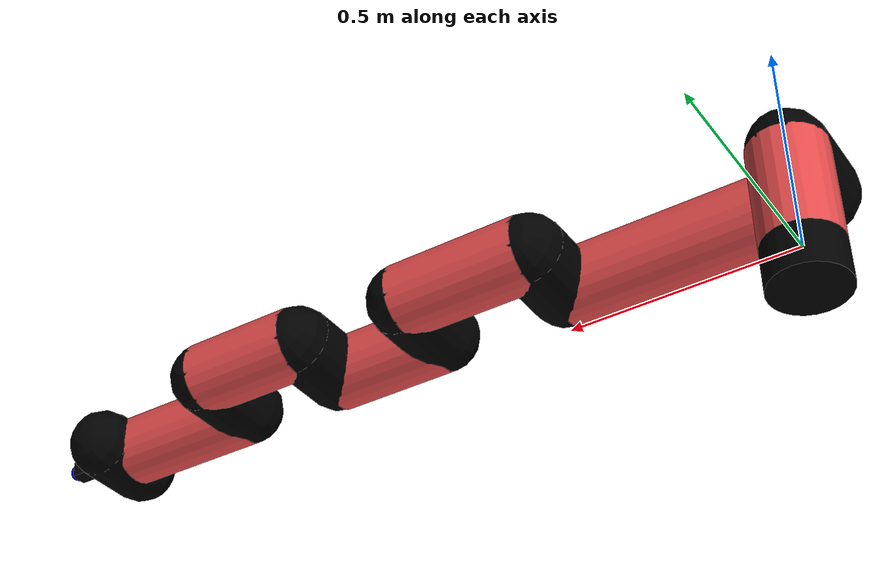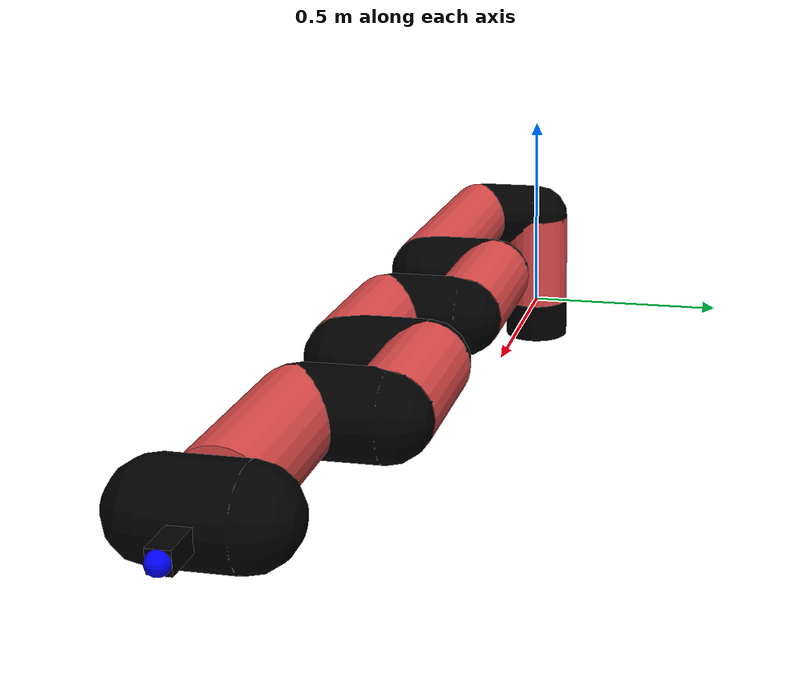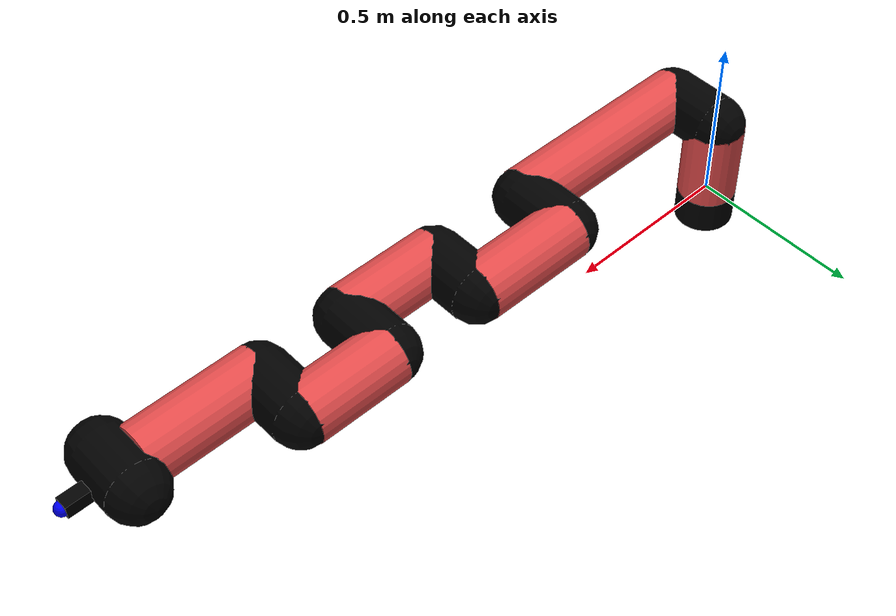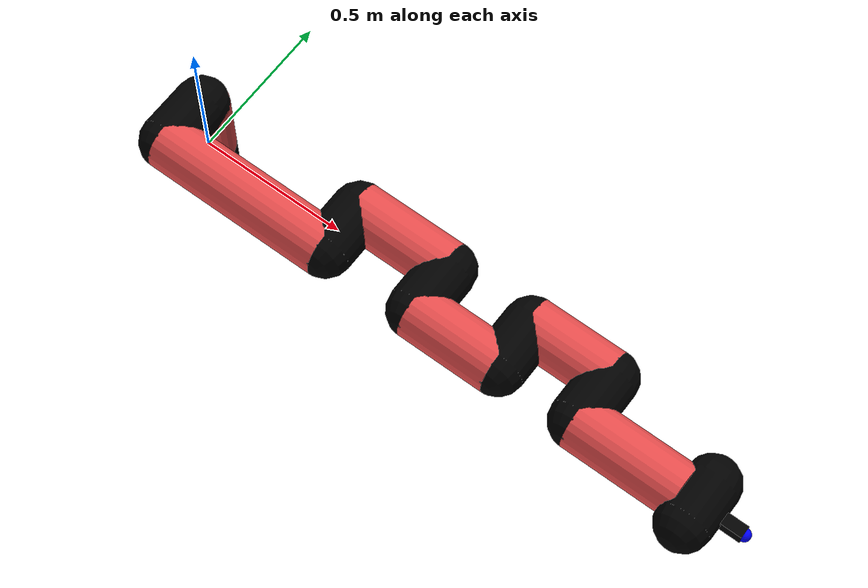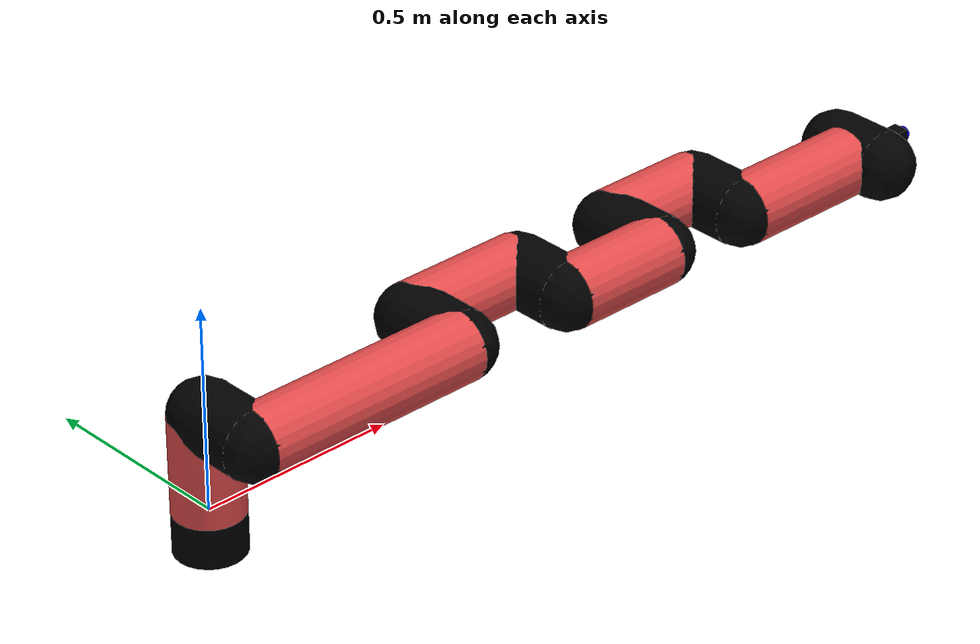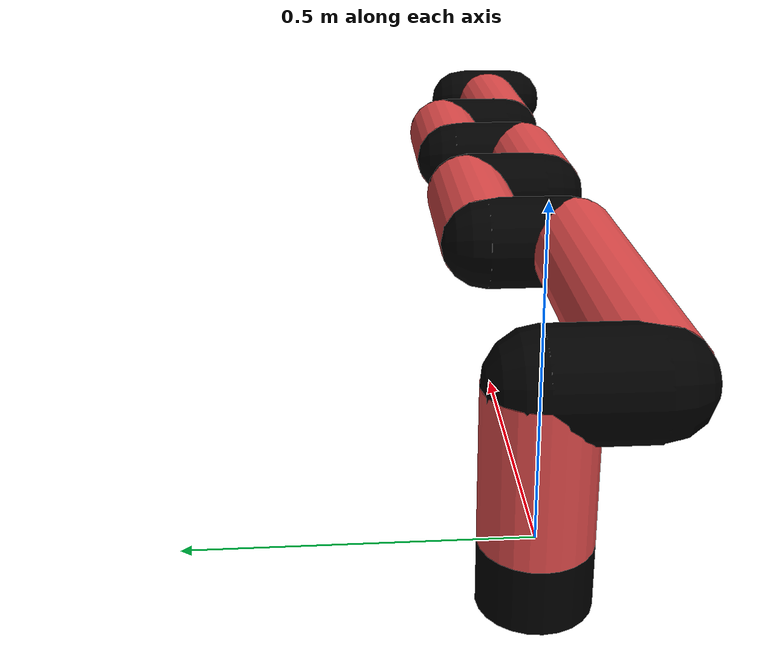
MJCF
<mujoco model="manipulator">
		<compiler angle="degree" coordinate="local" inertiafromgeom="auto" meshdir="meshes/"/>
		<option gravity="0 0 0" integrator="RK4" iterations="30" timestep="0.01"/>

		<default>
		<joint armature="1" limited="true" stiffness="10" damping="15" frictionloss="5.0"/>
		<geom conaffinity="1" condim="3" contype="1" friction=".5 .1 .1" margin="0.002"/>
		<motor ctrllimited="true"/>
		<position ctrllimited="true"/>
		</default>

		<asset>
		<texture builtin="gradient" height="100" rgb1="1.0 1.0 1.0" rgb2="1.0 1.0 1.0" type="skybox" width="100"/>
		<texture builtin="flat" height="32" name="arm_tex" rgb1="0.9 0.3 0.3" type="2d" width="32"/>
		<texture builtin="flat" height="32" name="gripper_tex" rgb1="0.0 0.0 0.0" type="cube" width="32"/>

		<material name="arm_mat" shininess="0.1" specular="0.1" texture="arm_tex"/>
		<material name="gripper_mat" shininess="1" specular="1" texture="gripper_tex"/>
		</asset>

		<worldbody>
		<light cutoff="45" diffuse=".8 .8 .8" dir="0 0.16 -1" directional="false" name="light" pos="0 -2.0 8.0" specular="0.3 0.3 0.3"/>

		<body name="base_link" pos="0 0 -0.1">
		<geom fromto="0 0 0 0 0 0.1" material="arm_mat" name="base_link" rgba="0.0 0.0 0.0 1" size="0.085" type="cylinder"/>
		</body>

		<body name="l1" pos="0 0 0">
<geom fromto="0 0 0 0 0 0.24" material="arm_mat" name="l1" rgba="0.9 0.3 0.3 1" size="0.085" type="cylinder"/>
<geom fromto="0 0 0.24 0 -0.16 0.24" material="arm_mat" name="l1_ex" rgba="0.0 0.0 0.0 1" size="0.085" type="capsule"/>
<joint axis="0 0 1" name="j1" pos="0 0 0" range="-90 90" damping="28.11" frictionloss="11.72"/>

<body name="l2" pos="0 -0.16 0.24">
<geom fromto="0 0 0 0.59 0 0" material="arm_mat" name="l2" rgba="0.9 0.3 0.3 1" size="0.085" type="cylinder"/>
<geom fromto="0.59 0 0 0.59 0.16 0" material="arm_mat" name="l2_ex" rgba="0.0 0.0 0.0 1" size="0.085" type="capsule"/>
<joint axis="0.0 1.0 0.0" name="j2" pos="0 0 0" range="-90 60" damping="30.35" frictionloss="7.97"/>

<body name="l3" pos="0.59 0.16 0">
<geom fromto="0 0 0 0.32 0 0" material="arm_mat" name="l3" rgba="0.9 0.3 0.3 1" size="0.085" type="cylinder"/>
<geom fromto="0.32 0 0 0.32 -0.16 0" material="arm_mat" name="l3_ex" rgba="0.0 0.0 0.0 1" size="0.085" type="capsule"/>
<joint axis="0.0 1.0 0.0" name="j3" pos="0 0 0" range="-30 60" damping="29.52" frictionloss="12.48"/>

<body name="l4" pos="0.32 -0.16 0">
<geom fromto="0 0 0 0.29 0 0" material="arm_mat" name="l4" rgba="0.9 0.3 0.3 1" size="0.085" type="cylinder"/>
<geom fromto="0.29 0 0 0.29 0.16 0" material="arm_mat" name="l4_ex" rgba="0.0 0.0 0.0 1" size="0.085" type="capsule"/>
<joint axis="0.0 1.0 0.0" name="j4" pos="0 0 0" range="-30 60" damping="31.52" frictionloss="9.38"/>

<body name="l5" pos="0.29 0.16 0">
<geom fromto="0 0 0 0.27 0 0" material="arm_mat" name="l5" rgba="0.9 0.3 0.3 1" size="0.085" type="cylinder"/>
<geom fromto="0.27 0 0 0.27 -0.16 0" material="arm_mat" name="l5_ex" rgba="0.0 0.0 0.0 1" size="0.085" type="capsule"/>
<joint axis="0.0 1.0 0.0" name="j5" pos="0 0 0" range="-30 60" damping="28.48" frictionloss="12.3"/>

<body name="l6" pos="0.27 -0.16 0">
<geom fromto="0 0 0 0.35 0 0" material="arm_mat" name="l6" rgba="0.9 0.3 0.3 1" size="0.085" type="cylinder"/>
<joint axis="0.0 1.0 0.0" name="j6" pos="0 0 0" range="-30 60" damping="28.61" frictionloss="9.64"/>

<body name="gripper" pos="0.35 0 0">
<geom fromto="0.05 -0.07 0 0.05 0.07 0" material="gripper_mat" name="gripper" rgba="0.0 0.0 0.0 1" size="0.085" type="capsule"/><joint axis="1 0 0" name="j7" pos="0 0 0" range="-90 90" damping="15" frictionloss="5.0"/><body name="finger" pos="0.1 0 0">
<geom fromto="0 0.0 0 0.1 0.0 0" material="gripper_mat" name="finger" rgba="0.0 0.0 0.0 1" size="0.020 0.06 0.06" type="box"/>
</body>
<site name="current" pos="0.2 0. 0.0" rgba="0. 0. 1.0 1" size="0.02" type="sphere"/>
</body>
</body>
</body>
</body>
</body>
</body>
</body>
</worldbody>
<actuator>
<motor ctrllimited="true" ctrlrange="-1.0 1.0" joint="j1" gear="84.03"/>
<motor ctrllimited="true" ctrlrange="-1.0 1.0" joint="j2" gear="72.73"/>
<motor ctrllimited="true" ctrlrange="-1.0 1.0" joint="j3" gear="82.47"/>
<motor ctrllimited="true" ctrlrange="-1.0 1.0" joint="j4" gear="73.77"/>
<motor ctrllimited="true" ctrlrange="-1.0 1.0" joint="j5" gear="74.77"/>
<motor ctrllimited="true" ctrlrange="-1.0 1.0" joint="j6" gear="96.9"/>
<motor ctrllimited="true" ctrlrange="-1.0 1.0" joint="j7" gear="80"/>
</actuator>
</mujoco>
